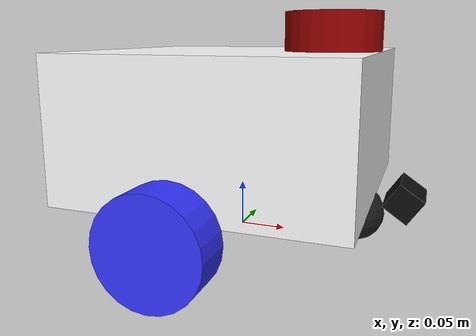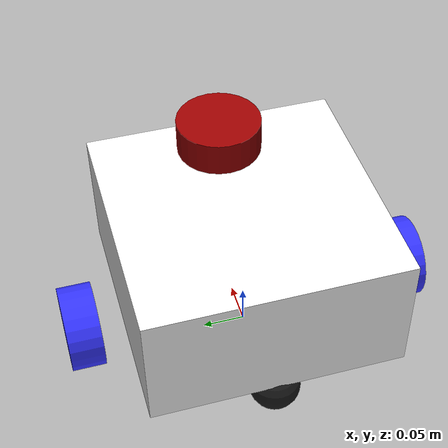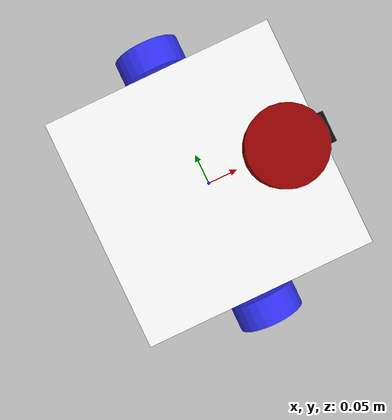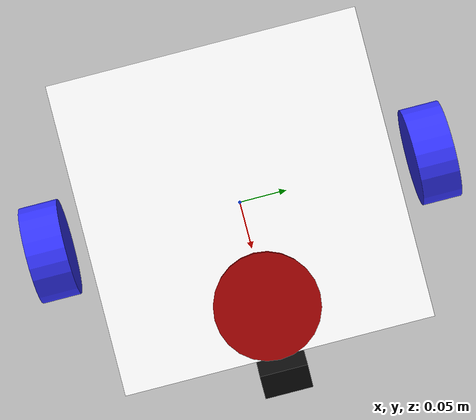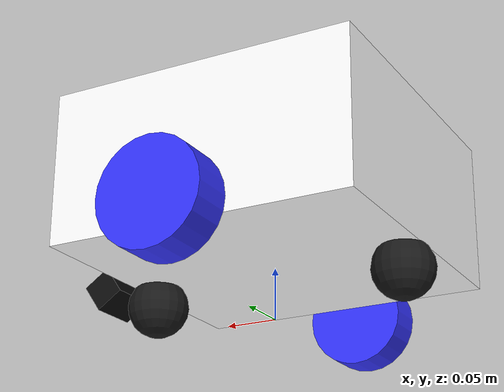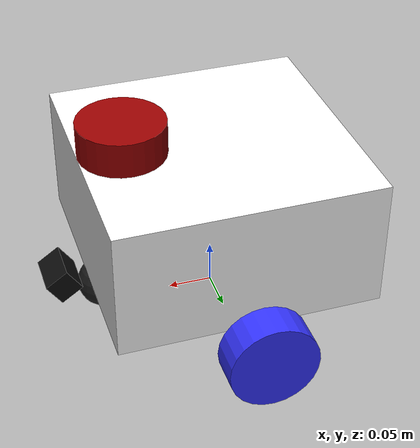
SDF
<?xml version="1.0"?>
<sdf version="1.6">
  <model name="nav_ugv">
    <link name="base_link">
      <!-- Chassis center sits at wheel_radius + chassis_z/2 = 0.05 + 0.075
           = 0.125m above the ground - just tall enough that the box's
           bottom face clears the wheels' contact patch. -->
      <pose>0 0 0.125 0 0 0</pose>
      <inertial>
        <mass>1.5</mass>
        <inertia>
          <ixx>0.0138</ixx>
          <ixy>0</ixy>
          <ixz>0</ixz>
          <iyy>0.0138</iyy>
          <iyz>0</iyz>
          <izz>0.0225</izz>
        </inertia>
      </inertial>
      <visual name="chassis_visual">
        <geometry>
          <box>
            <size>0.3 0.3 0.15</size>
          </box>
        </geometry>
        <material>
          <ambient>1 1 1 1</ambient>
          <diffuse>1 1 1 1</diffuse>
          <specular>0.3 0.3 0.3 1</specular>
        </material>
      </visual>
      <collision name="chassis_collision">
        <geometry>
          <box>
            <size>0.3 0.3 0.15</size>
          </box>
        </geometry>
      </collision>

      <visual name="lidar_visual">
        <pose>0.1 0 0.095 0 0 0</pose>
        <geometry>
          <cylinder>
            <radius>0.05</radius>
            <length>0.04</length>
          </cylinder>
        </geometry>
        <material>
          <ambient>0.6 0 0 1</ambient>
          <diffuse>0.6 0 0 1</diffuse>
        </material>
      </visual>
      <sensor name="lidar" type="gpu_lidar">
        <pose>0.1 0 0.095 0 0 0</pose>
        <topic>nav_ugv/scan</topic>
        <update_rate>10</update_rate>
        <always_on>true</always_on>
        <visualize>false</visualize>
        <lidar>
          <scan>
            <horizontal>
              <samples>360</samples>
              <resolution>1</resolution>
              <min_angle>-3.14159</min_angle>
              <max_angle>3.14159</max_angle>
            </horizontal>
            <vertical>
              <samples>1</samples>
              <resolution>1</resolution>
              <min_angle>0</min_angle>
              <max_angle>0</max_angle>
            </vertical>
          </scan>
          <range>
            <min>0.3</min>
            <max>12.0</max>
            <resolution>0.01</resolution>
          </range>
        </lidar>
      </sensor>
    </link>

    <link name="left_wheel">
      <pose>0 0.2 0.05 -1.5708 0 0</pose>
      <inertial>
        <mass>0.2</mass>
        <inertia>
          <ixx>0.00013</ixx>
          <ixy>0</ixy>
          <ixz>0</ixz>
          <iyy>0.00013</iyy>
          <iyz>0</iyz>
          <izz>0.00025</izz>
        </inertia>
      </inertial>
      <visual name="visual">
        <geometry>
          <cylinder>
            <radius>0.05</radius>
            <length>0.04</length>
          </cylinder>
        </geometry>
        <material>
          <ambient>0.2 0.2 1 1</ambient>
          <diffuse>0.2 0.2 1 1</diffuse>
        </material>
      </visual>
      <collision name="collision">
        <geometry>
          <sphere>
            <radius>0.05</radius>
          </sphere>
        </geometry>
      </collision>
    </link>

    <link name="right_wheel">
      <pose>0 -0.2 0.05 -1.5708 0 0</pose>
      <inertial>
        <mass>0.2</mass>
        <inertia>
          <ixx>0.00013</ixx>
          <ixy>0</ixy>
          <ixz>0</ixz>
          <iyy>0.00013</iyy>
          <iyz>0</iyz>
          <izz>0.00025</izz>
        </inertia>
      </inertial>
      <visual name="visual">
        <geometry>
          <cylinder>
            <radius>0.05</radius>
            <length>0.04</length>
          </cylinder>
        </geometry>
        <material>
          <ambient>0.2 0.2 1 1</ambient>
          <diffuse>0.2 0.2 1 1</diffuse>
        </material>
      </visual>
      <collision name="collision">
        <geometry>
          <sphere>
            <radius>0.05</radius>
          </sphere>
        </geometry>
      </collision>
    </link>

    <link name="caster_wheel">
      <pose>-0.13 0 0.03 0 0 0</pose>
      <inertial>
        <mass>0.1</mass>
        <inertia>
          <ixx>0.000036</ixx>
          <ixy>0</ixy>
          <ixz>0</ixz>
          <iyy>0.000036</iyy>
          <iyz>0</iyz>
          <izz>0.000036</izz>
        </inertia>
      </inertial>
      <visual name="visual">
        <geometry>
          <sphere>
            <radius>0.03</radius>
          </sphere>
        </geometry>
        <material>
          <ambient>0.1 0.1 0.1 1</ambient>
          <diffuse>0.1 0.1 0.1 1</diffuse>
        </material>
      </visual>
      <collision name="collision">
        <geometry>
          <sphere>
            <radius>0.03</radius>
          </sphere>
        </geometry>
        <surface>
          <friction>
            <ode>
              <mu>0.001</mu>
              <mu2>0.001</mu2>
            </ode>
          </friction>
        </surface>
      </collision>
    </link>

    <link name="front_caster_wheel">
      <pose>0.13 0 0.03 0 0 0</pose>
      <inertial>
        <mass>0.1</mass>
        <inertia>
          <ixx>0.000036</ixx>
          <ixy>0</ixy>
          <ixz>0</ixz>
          <iyy>0.000036</iyy>
          <iyz>0</iyz>
          <izz>0.000036</izz>
        </inertia>
      </inertial>
      <visual name="visual">
        <geometry>
          <sphere>
            <radius>0.03</radius>
          </sphere>
        </geometry>
        <material>
          <ambient>0.1 0.1 0.1 1</ambient>
          <diffuse>0.1 0.1 0.1 1</diffuse>
        </material>
      </visual>
      <collision name="collision">
        <geometry>
          <sphere>
            <radius>0.03</radius>
          </sphere>
        </geometry>
        <surface>
          <friction>
            <ode>
              <mu>0.001</mu>
              <mu2>0.001</mu2>
            </ode>
          </friction>
        </surface>
      </collision>
    </link>

    <joint name="left_wheel_joint" type="revolute">
      <parent>base_link</parent>
      <child>left_wheel</child>
      <axis>
        <xyz>0 0 1</xyz>
        <limit>
          <lower>-1.79769e+308</lower>
          <upper>1.79769e+308</upper>
        </limit>
      </axis>
    </joint>

    <joint name="right_wheel_joint" type="revolute">
      <parent>base_link</parent>
      <child>right_wheel</child>
      <axis>
        <xyz>0 0 1</xyz>
        <limit>
          <lower>-1.79769e+308</lower>
          <upper>1.79769e+308</upper>
        </limit>
      </axis>
    </joint>

    <joint name="front_caster_wheel_joint" type="ball">
      <parent>base_link</parent>
      <child>front_caster_wheel</child>
    </joint>

    <joint name="caster_wheel_joint" type="ball">
      <parent>base_link</parent>
      <child>caster_wheel</child>
    </joint>

    <link name="front_camera_link">
      <pose>0.18 0 0.05 0 0.6 0</pose>
      <visual name="front_camera_visual">
        <geometry>
          <box>
            <size>0.03 0.05 0.03</size>
          </box>
        </geometry>
        <material>
          <ambient>0.05 0.05 0.05 1</ambient>
          <diffuse>0.05 0.05 0.05 1</diffuse>
        </material>
      </visual>
      <sensor name="front_camera" type="rgbd_camera">
        <pose>0 0 0 0 0 0</pose>
        <always_on>true</always_on>
        <update_rate>10</update_rate>
        <visualize>true</visualize>
        <topic>nav_ugv/front_camera</topic>
        <camera>
          <horizontal_fov>1.047</horizontal_fov>
          <image>
            <width>320</width>
            <height>240</height>
          </image>
          <clip>
            <near>0.1</near>
            <far>8.0</far>
          </clip>
        </camera>
      </sensor>
    </link>
    <joint name="front_camera_joint" type="fixed">
      <parent>base_link</parent>
      <child>front_camera_link</child>
    </joint>

    <link name="video_camera_link">
      <pose>0.1 0 0.22 0 0.15 0</pose>
      <inertial>
        <mass>0.02</mass>
        <inertia>
          <ixx>0.000005</ixx>
          <iyy>0.000005</iyy>
          <izz>0.000005</izz>
          <ixy>0</ixy>
          <ixz>0</ixz>
          <iyz>0</iyz>
        </inertia>
      </inertial>
      <visual name="video_camera_visual">
        <geometry>
          <box>
            <size>0.03 0.05 0.03</size>
          </box>
        </geometry>
        <material>
          <ambient>0.05 0.05 0.05 1</ambient>
          <diffuse>0.05 0.05 0.05 1</diffuse>
        </material>
      </visual>
      <sensor name="video_camera" type="camera">
        <pose>0 0 0 0 0 0</pose>
        <always_on>true</always_on>
        <update_rate>10</update_rate>
        <visualize>true</visualize>
        <topic>nav_ugv/video_camera</topic>
        <camera>
          <horizontal_fov>1.3</horizontal_fov>
          <image>
            <width>320</width>
            <height>240</height>
          </image>
          <clip>
            <near>0.1</near>
            <far>15.0</far>
          </clip>
        </camera>
      </sensor>
    </link>
    <joint name="video_camera_joint" type="fixed">
      <parent>base_link</parent>
      <child>video_camera_link</child>
    </joint>
  </model>
</sdf>
